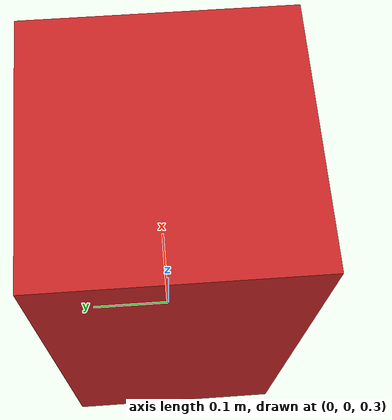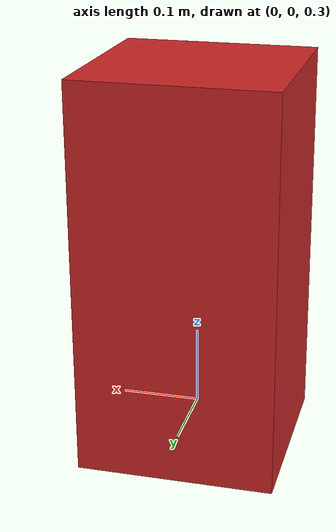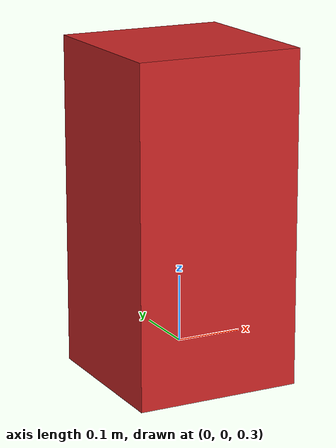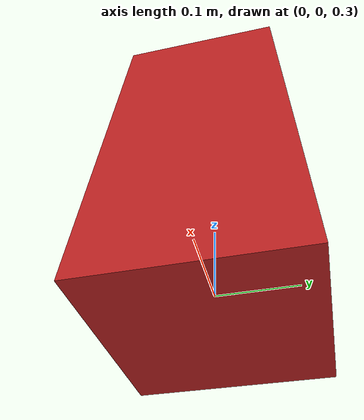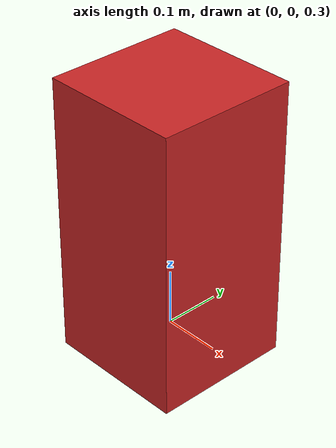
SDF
<?xml version="1.0" ?>
<sdf version="1.6">
  <model name="moving_box">
    <pose>0 0 0.501 0 0 0</pose>

    <link name="link">
      <inertial>
        <mass>50.0</mass>
        <inertia>
          <ixx>8.333</ixx> <ixy>0</ixy> <ixz>0</ixz>
          <iyy>8.333</iyy> <iyz>0</iyz> <izz>8.333</izz>
        </inertia>
      </inertial>

      <visual name="visual">
        <geometry><box><size>0.25 0.25 0.5</size></box></geometry>
        <material>
          <script>
            <uri>file://media/materials/scripts/gazebo.material</uri>
            <name>Gazebo/Red</name>
          </script>
        </material>
      </visual>

      <collision name="collision">
        <geometry><box><size>0.25 0.25 0.5</size></box></geometry>

        <surface>
          <friction>
            <ode>
              <mu>0.0</mu>    <mu2>0.0</mu2>  <slip1>1.0</slip1> <slip2>1.0</slip2>
            </ode>
          </friction>
          <contact>
             <ode>
               <kp>10000000.0</kp> <kd>1.0</kd>        </ode>
          </contact>
        </surface>
        </collision>
    </link>

    <plugin name="object_controller" filename="libgazebo_ros_planar_move.so">
      <ros>
        <namespace>/obstacle1</namespace> <remapping>cmd_vel:=cmd_vel</remapping>
        <remapping>odom:=odom</remapping>
      </ros>
      <update_rate>100</update_rate>
      <publish_odom>true</publish_odom>
      <robot_base_frame>link</robot_base_frame>
    </plugin>
  </model>
</sdf>
